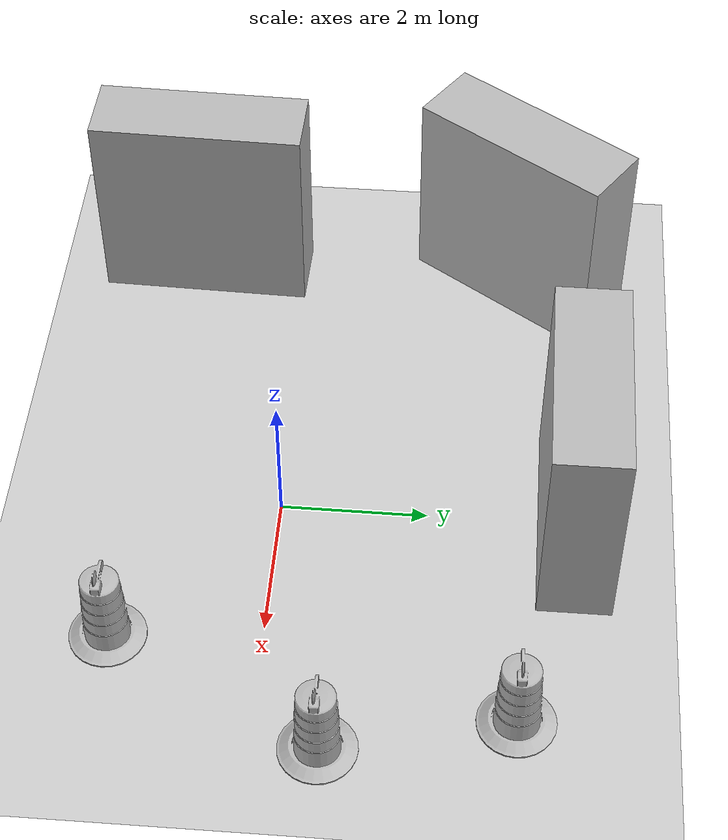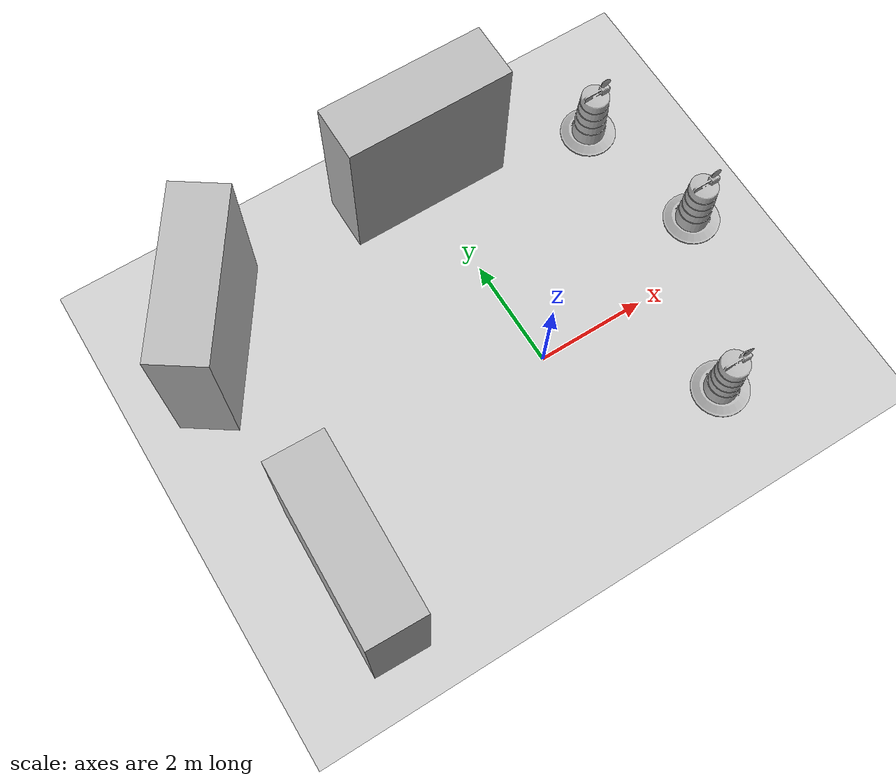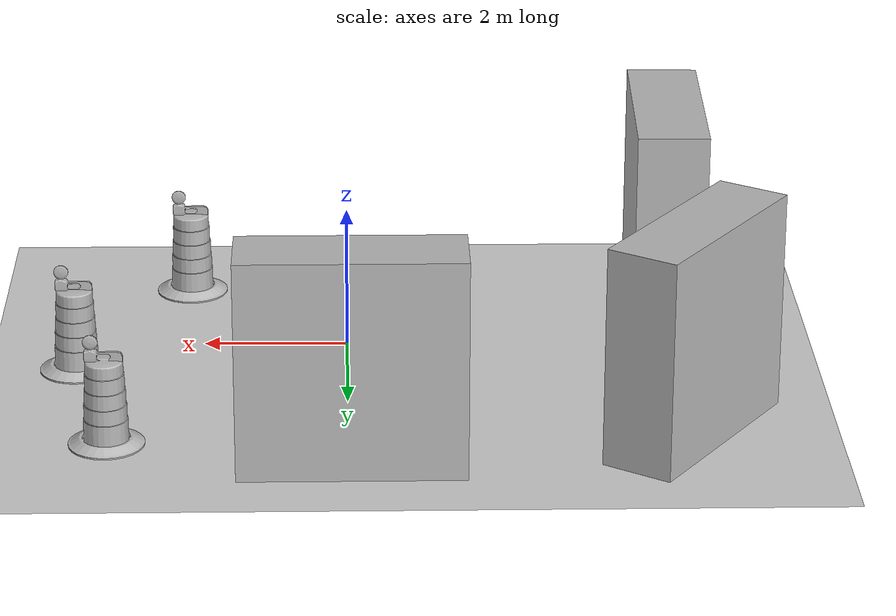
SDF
<sdf version="1.5">
 <world name="default">
  <light name="sun" type="directional">
   <pose>0 0 10 0 -0 0</pose>
   <diffuse>0.8 0.8 0.8 1</diffuse>
   <specular>0.2 0.2 0.2 1</specular>
   <attenuation>
    <range>1000</range>
    <constant>0.9</constant>
    <linear>0.01</linear>
    <quadratic>0.001</quadratic>
   </attenuation>
   <direction>-0.5 0.1 -0.9</direction>
  </light>
  <model name="ground_plane">
   <static>1</static>
   <link name="link">
    <collision name="collision">
     <geometry><plane><normal>0 0 1</normal><size>100 100</size></plane></geometry>
     <surface>
      <contact><collide_bitmask>65535</collide_bitmask></contact>
      <friction><ode><mu>100</mu><mu2>50</mu2></ode></friction>
     </surface>
    </collision>
    <visual name="visual">
     <cast_shadows>0</cast_shadows>
     <geometry><plane><normal>0 0 1</normal><size>100 100</size></plane></geometry>
     <material>
      <script><uri>file://media/materials/scripts/gazebo.material</uri><name>Gazebo/Grey</name></script>
     </material>
    </visual>
   </link>
  </model>
  <gravity>0 0 -9.8</gravity>
  <magnetic_field>6e-06 2.3e-05 -4.2e-05</magnetic_field>
  <atmosphere type="adiabatic"/>
  <physics name="default_physics" default="0" type="ode">
   <max_step_size>0.001</max_step_size>
   <real_time_factor>1</real_time_factor>
   <real_time_update_rate>1000</real_time_update_rate>
  </physics>
  <scene><ambient>0.4 0.4 0.4 1</ambient><background>0.7 0.7 0.7 1</background><shadows>1</shadows></scene>
  <audio><device>default</device></audio>
  <spherical_coordinates>
   <surface_model>EARTH_WGS84</surface_model>
   <latitude_deg>0</latitude_deg>
   <longitude_deg>0</longitude_deg>
   <elevation>0</elevation>
   <heading_deg>0</heading_deg>
  </spherical_coordinates>
  <model name="brick_box_3x1x3">
   <static>1</static>
   <link name="chassis">
    <pose>0 0 1.5 0 -0 0</pose>
    <collision name="collision"><geometry><box><size>3 1 3</size></box></geometry></collision>
    <visual name="visual">
     <geometry><mesh><uri>model://brick_box_3x1x3/meshes/simple_box.dae</uri><scale>3 1 3</scale></mesh></geometry>
     <material>
      <script>
       <uri>model://brick_box_3x1x3/materials/scripts</uri>
       <uri>model://brick_box_3x1x3/materials/textures</uri>
       <name>BrickBox/Diffuse</name>
      </script>
     </material>
    </visual>
   </link>
   <pose>-0.050068 4.00192 0 0 -0 0</pose>
  </model>
  <model name="Construction Barrel">
   <link name="link">
    <inertial>
     <pose>0 0 0.4 0 -0 0</pose>
     <mass>500</mass>
     <inertia><ixx>51.2096</ixx><iyy>51.2096</iyy><izz>25</izz><ixy>0</ixy><ixz>0</ixz><iyz>0</iyz></inertia>
    </inertial>
    <collision name="collision">
     <geometry><mesh><uri>model://construction_barrel/meshes/construction_barrel.dae</uri></mesh></geometry>
    </collision>
    <visual name="visual">
     <geometry><mesh><uri>model://construction_barrel/meshes/construction_barrel.dae</uri></mesh></geometry>
    </visual>
   </link>
   <pose>3.74483 0.853946 1e-06 3e-06 2e-06 -2.6e-05</pose>
  </model>
  <model name="Construction Barrel_0">
   <link name="link">
    <inertial>
     <pose>0 0 0.4 0 -0 0</pose>
     <mass>500</mass>
     <inertia><ixx>51.2096</ixx><iyy>51.2096</iyy><izz>25</izz><ixy>0</ixy><ixz>0</ixz><iyz>0</iyz></inertia>
    </inertial>
    <collision name="collision">
     <geometry><mesh><uri>model://construction_barrel/meshes/construction_barrel.dae</uri></mesh></geometry>
    </collision>
    <visual name="visual">
     <geometry><mesh><uri>model://construction_barrel/meshes/construction_barrel.dae</uri></mesh></geometry>
    </visual>
   </link>
   <pose>2.26014 -2.01055 -0 1e-06 -1e-06 -2.6e-05</pose>
  </model>
  <model name="Construction Barrel_1">
   <link name="link">
    <inertial>
     <pose>0 0 0.4 0 -0 0</pose>
     <mass>500</mass>
     <inertia><ixx>51.2096</ixx><iyy>51.2096</iyy><izz>25</izz><ixy>0</ixy><ixz>0</ixz><iyz>0</iyz></inertia>
    </inertial>
    <collision name="collision">
     <geometry><mesh><uri>model://construction_barrel/meshes/construction_barrel.dae</uri></mesh></geometry>
    </collision>
    <visual name="visual">
     <geometry><mesh><uri>model://construction_barrel/meshes/construction_barrel.dae</uri></mesh></geometry>
    </visual>
   </link>
   <pose>3.17934 3.29753 1e-06 3e-06 2e-06 -2.3e-05</pose>
  </model>
  <model name="brick_box_3x1x3_0">
   <static>1</static>
   <link name="chassis">
    <pose>0 0 1.5 0 -0 0</pose>
    <collision name="collision"><geometry><box><size>3 1 3</size></box></geometry></collision>
    <visual name="visual">
     <geometry><mesh><uri>model://brick_box_3x1x3/meshes/simple_box.dae</uri><scale>3 1 3</scale></mesh></geometry>
     <material>
      <script>
       <uri>model://brick_box_3x1x3/materials/scripts</uri>
       <uri>model://brick_box_3x1x3/materials/textures</uri>
       <name>BrickBox/Diffuse</name>
      </script>
     </material>
    </visual>
   </link>
   <pose>-4.58103 -1.56408 0 0 0 -1.59958</pose>
  </model>
  <model name="brick_box_3x1x3_1">
   <static>1</static>
   <link name="chassis">
    <pose>0 0 1.5 0 -0 0</pose>
    <collision name="collision"><geometry><box><size>3 1 3</size></box></geometry></collision>
    <visual name="visual">
     <geometry><mesh><uri>model://brick_box_3x1x3/meshes/simple_box.dae</uri><scale>3 1 3</scale></mesh></geometry>
     <material>
      <script>
       <uri>model://brick_box_3x1x3/materials/scripts</uri>
       <uri>model://brick_box_3x1x3/materials/textures</uri>
       <name>BrickBox/Diffuse</name>
      </script>
     </material>
    </visual>
   </link>
   <pose>-4.56198 3.11136 0.000795 0.002122 -0.003107 0.971553</pose>
  </model>
 </world>
</sdf>
